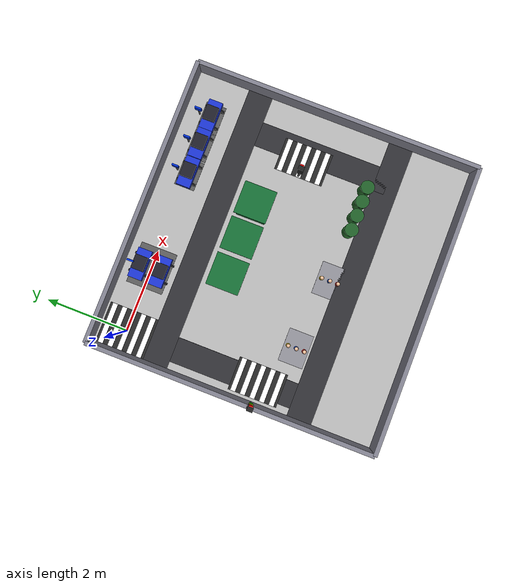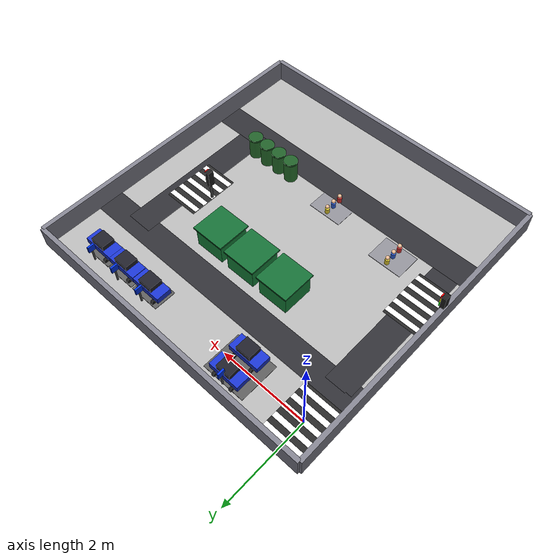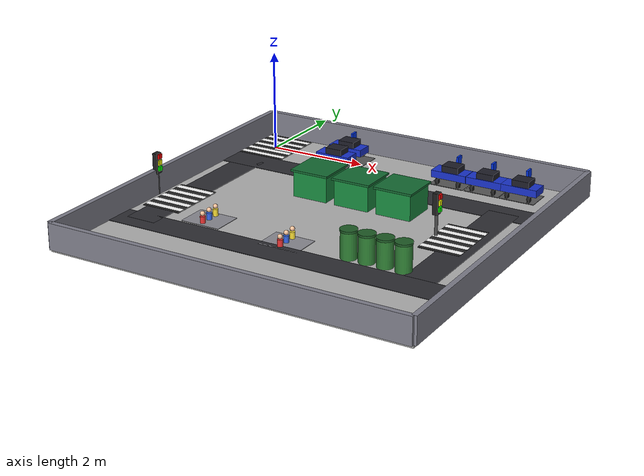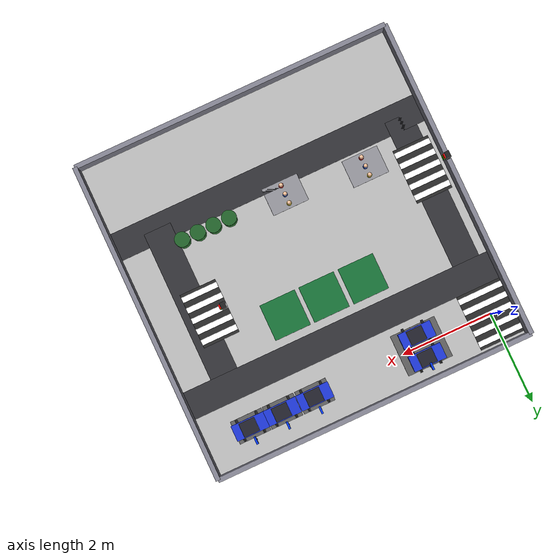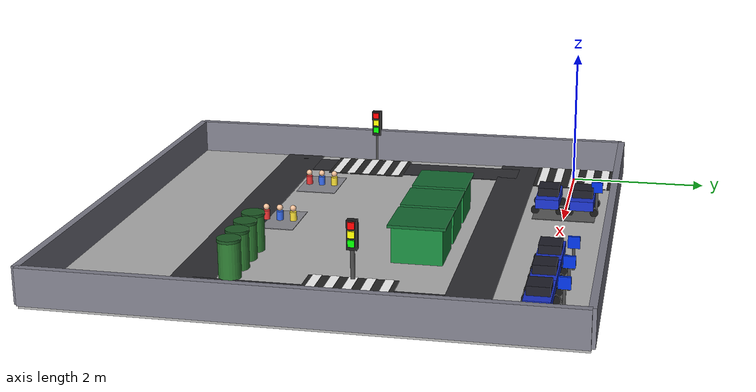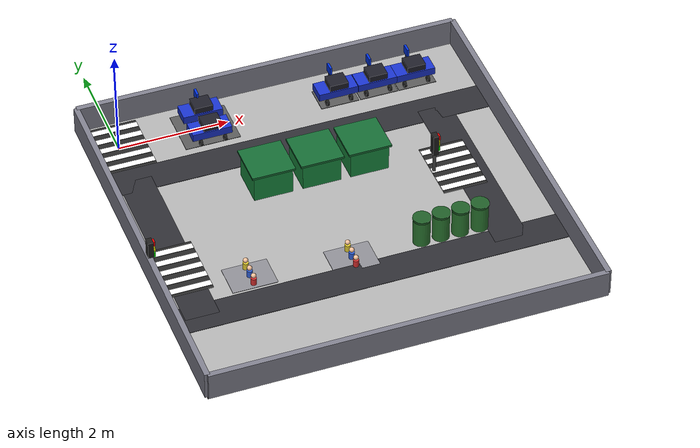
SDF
<?xml version="1.0" ?>

<sdf version="1.6">
  <world name="robot_nav_field">

    <!-- ======================= 物理引擎 ======================= -->
    <physics type="ode">
      <max_step_size>0.001</max_step_size>
      <real_time_factor>1</real_time_factor>
      <real_time_update_rate>1000</real_time_update_rate>
    </physics>

    <!-- ======================= 场景与光照 ======================= -->
    <scene>
      <ambient>0.45 0.45 0.45 1</ambient>
      <background>0.7 0.7 0.7 1</background>
      <shadows>true</shadows>
    </scene>

    <light name="sun" type="directional">
      <pose>0 0 10 0 0 0</pose>
      <diffuse>0.8 0.8 0.8 1</diffuse>
      <specular>0.1 0.1 0.1 1</specular>
      <direction>0.3 0.3 -1</direction>
      <cast_shadows>true</cast_shadows>
    </light>

    <model name="ground_plane">
      <static>true</static>
      <pose>2.975 -2.8 -0.025 0 0 0</pose>
      <link name="ground_link">
        <visual name="ground_visual">
          <geometry>
            <box><size>7.0 7.0 0.05</size></box>
          </geometry>
          <material>
            <ambient>0.70 0.70 0.70 1</ambient>
            <diffuse>0.70 0.70 0.70 1</diffuse>
          </material>
        </visual>
        <collision name="ground_collision">
          <geometry>
            <box><size>7.0 7.0 0.05</size></box>
          </geometry>
        </collision>
      </link>
    </model>

    <!-- ============================================================
         2. 外部围墙 (Boundary Walls)  —— 高 0.5m, 防机器人跑出
         ============================================================ -->
    <model name="boundary_walls">
      <static>true</static>
      <!-- 北墙 (顶部, X=-0.525) -->
      <link name="north_wall">
        <pose>-0.525 -2.8 0.25 0 0 0</pose>
        <visual name="north_visual">
          <geometry><box><size>0.1 7.0 0.5</size></box></geometry>
          <material><ambient>0.50 0.50 0.55 1</ambient><diffuse>0.50 0.50 0.55 1</diffuse></material>
        </visual>
        <collision name="north_collision">
          <geometry><box><size>0.1 7.0 0.5</size></box></geometry>
        </collision>
      </link>
      <!-- 南墙 (底部, X=6.475) -->
      <link name="south_wall">
        <pose>6.475 -2.8 0.25 0 0 0</pose>
        <visual name="south_visual">
          <geometry><box><size>0.1 7.0 0.5</size></box></geometry>
          <material><ambient>0.50 0.50 0.55 1</ambient><diffuse>0.50 0.50 0.55 1</diffuse></material>
        </visual>
        <collision name="south_collision">
          <geometry><box><size>0.1 7.0 0.5</size></box></geometry>
        </collision>
      </link>
      <!-- 西墙 (左侧, Y=-6.3) -->
      <link name="west_wall">
        <pose>2.975 -6.3 0.25 0 0 0</pose>
        <visual name="west_visual">
          <geometry><box><size>7.0 0.1 0.5</size></box></geometry>
          <material><ambient>0.50 0.50 0.55 1</ambient><diffuse>0.50 0.50 0.55 1</diffuse></material>
        </visual>
        <collision name="west_collision">
          <geometry><box><size>7.0 0.1 0.5</size></box></geometry>
        </collision>
      </link>
      <!-- 东墙 (右侧, Y=0.7) -->
      <link name="east_wall">
        <pose>2.975 0.7 0.25 0 0 0</pose>
        <visual name="east_visual">
          <geometry><box><size>7.0 0.1 0.5</size></box></geometry>
          <material><ambient>0.50 0.50 0.55 1</ambient><diffuse>0.50 0.50 0.55 1</diffuse></material>
        </visual>
        <collision name="east_collision">
          <geometry><box><size>7.0 0.1 0.5</size></box></geometry>
        </collision>
      </link>
    </model>

    <model name="roads">
      <static>true</static>
      <!-- 左侧通道 -->
      <link name="road_left">
        <pose>2.975 -4.5 0.005 0 0 0</pose>
        <visual name="road_left_visual">
          <geometry><box><size>7.0 0.6 0.01</size></box></geometry>
          <material><ambient>0.18 0.18 0.20 1</ambient><diffuse>0.18 0.18 0.20 1</diffuse></material>
        </visual>
        <collision name="road_left_collision">
          <geometry><box><size>7.0 0.6 0.01</size></box></geometry>
        </collision>
      </link>
      <!-- 右侧通道 -->
      <link name="road_right">
        <pose>2.975 -0.9 0.005 0 0 0</pose>
        <visual name="road_right_visual">
          <geometry><box><size>7.0 0.6 0.01</size></box></geometry>
          <material><ambient>0.18 0.18 0.20 1</ambient><diffuse>0.18 0.18 0.20 1</diffuse></material>
        </visual>
        <collision name="road_right_collision">
          <geometry><box><size>7.0 0.6 0.01</size></box></geometry>
        </collision>
      </link>
      <!-- 左下通道 (楼宇D/垃圾桶旁) -->
      <link name="road_bottom_left">
        <pose>5.5 -2.7 0.005 0 0 0</pose>
        <visual name="road_bl_visual">
          <geometry><box><size>0.6 3.6 0.01</size></box></geometry>
          <material><ambient>0.18 0.18 0.20 1</ambient><diffuse>0.18 0.18 0.20 1</diffuse></material>
        </visual>
        <collision name="road_bl_collision">
          <geometry><box><size>0.6 3.6 0.01</size></box></geometry>
        </collision>
      </link>
      <!-- 顶部通道 -->
      <link name="road_top">
        <pose>0 -2.7 0.005 0 0 0</pose>
        <visual name="road_top_visual">
          <geometry><box><size>0.6 3.6 0.01</size></box></geometry>
          <material><ambient>0.18 0.18 0.20 1</ambient><diffuse>0.18 0.18 0.20 1</diffuse></material>
        </visual>
        <collision name="road_top_collision">
          <geometry><box><size>0.6 3.6 0.01</size></box></geometry>
        </collision>
      </link>
    </model>

    <!-- ============================================================
         4. 起点/终点区  —— 斑马线, 中心 (0,0,0), 右上角
         ============================================================ -->
    <model name="start_finish">
      <static>true</static>
      <link name="zebra_link">
        <visual name="zebra_base">
          <pose>0 0 0.006 0 0 0</pose>
          <geometry><box><size>1.0 1.2 0.012</size></box></geometry>
          <material><ambient>0.15 0.15 0.15 1</ambient><diffuse>0.15 0.15 0.15 1</diffuse></material>
        </visual>
        <collision name="zebra_base_col">
          <pose>0 0 0.006 0 0 0</pose>
          <geometry><box><size>1.0 1.2 0.012</size></box></geometry>
        </collision>
        <visual name="stripe_1"><pose>0 -0.48 0.013 0 0 0</pose><geometry><box><size>1.0 0.12 0.014</size></box></geometry><material><ambient>1 1 1 1</ambient><diffuse>1 1 1 1</diffuse></material></visual>
        <visual name="stripe_2"><pose>0 -0.24 0.013 0 0 0</pose><geometry><box><size>1.0 0.12 0.014</size></box></geometry><material><ambient>1 1 1 1</ambient><diffuse>1 1 1 1</diffuse></material></visual>
        <visual name="stripe_3"><pose>0 0 0.013 0 0 0</pose><geometry><box><size>1.0 0.12 0.014</size></box></geometry><material><ambient>1 1 1 1</ambient><diffuse>1 1 1 1</diffuse></material></visual>
        <visual name="stripe_4"><pose>0 0.24 0.013 0 0 0</pose><geometry><box><size>1.0 0.12 0.014</size></box></geometry><material><ambient>1 1 1 1</ambient><diffuse>1 1 1 1</diffuse></material></visual>
        <visual name="stripe_5"><pose>0 0.48 0.013 0 0 0</pose><geometry><box><size>1.0 0.12 0.014</size></box></geometry><material><ambient>1 1 1 1</ambient><diffuse>1 1 1 1</diffuse></material></visual>
      </link>
    </model>

    <model name="zebra_top">
      <static>true</static>
      <pose>0 -3.3 0 0 0 0</pose>
      <link name="zebra_top_link">
        <visual name="base">
          <pose>0 0 0.006 0 0 0</pose>
          <geometry><box><size>0.8 1.2 0.012</size></box></geometry>
          <material><ambient>0.15 0.15 0.15 1</ambient><diffuse>0.15 0.15 0.15 1</diffuse></material>
        </visual>
        <collision name="base_col">
          <pose>0 0 0.006 0 0 0</pose>
          <geometry><box><size>0.8 1.2 0.012</size></box></geometry>
        </collision>
        <visual name="s1"><pose>0 -0.48 0.013 0 0 0</pose><geometry><box><size>0.8 0.12 0.014</size></box></geometry><material><ambient>1 1 1 1</ambient><diffuse>1 1 1 1</diffuse></material></visual>
        <visual name="s2"><pose>0 -0.24 0.013 0 0 0</pose><geometry><box><size>0.8 0.12 0.014</size></box></geometry><material><ambient>1 1 1 1</ambient><diffuse>1 1 1 1</diffuse></material></visual>
        <visual name="s3"><pose>0 0 0.013 0 0 0</pose><geometry><box><size>0.8 0.12 0.014</size></box></geometry><material><ambient>1 1 1 1</ambient><diffuse>1 1 1 1</diffuse></material></visual>
        <visual name="s4"><pose>0 0.24 0.013 0 0 0</pose><geometry><box><size>0.8 0.12 0.014</size></box></geometry><material><ambient>1 1 1 1</ambient><diffuse>1 1 1 1</diffuse></material></visual>
        <visual name="s5"><pose>0 0.48 0.013 0 0 0</pose><geometry><box><size>0.8 0.12 0.014</size></box></geometry><material><ambient>1 1 1 1</ambient><diffuse>1 1 1 1</diffuse></material></visual>
      </link>
    </model>

    <model name="traffic_light_top">
      <static>true</static>
      <link name="tl_top_link">
        <visual name="pole_visual">
          <pose>-0.5 -3.3 0.3 0 0 0</pose>
          <geometry><cylinder><radius>0.03</radius><length>0.6</length></cylinder></geometry>
          <material><ambient>0.30 0.30 0.30 1</ambient><diffuse>0.30 0.30 0.30 1</diffuse></material>
        </visual>
        <collision name="pole_col">
          <pose>-0.5 -3.3 0.3 0 0 0</pose>
          <geometry><cylinder><radius>0.03</radius><length>0.6</length></cylinder></geometry>
        </collision>
        <visual name="housing_visual">
          <pose>-0.5 -3.3 0.62 0 0 0</pose>
          <geometry><box><size>0.10 0.14 0.40</size></box></geometry>
          <material><ambient>0.12 0.12 0.12 1</ambient><diffuse>0.12 0.12 0.12 1</diffuse></material>
        </visual>
        <collision name="housing_col">
          <pose>-0.5 -3.3 0.62 0 0 0</pose>
          <geometry><box><size>0.10 0.14 0.40</size></box></geometry>
        </collision>
        <visual name="red_visual">
          <pose>-0.43 -3.3 0.76 0 0 0</pose>
          <geometry><box><size>0.03 0.09 0.09</size></box></geometry>
          <material><ambient>1 0 0 1</ambient><diffuse>1 0 0 1</diffuse></material>
        </visual>
        <visual name="yellow_visual">
          <pose>-0.43 -3.3 0.64 0 0 0</pose>
          <geometry><box><size>0.03 0.09 0.09</size></box></geometry>
          <material><ambient>1 1 0 1</ambient><diffuse>1 1 0 1</diffuse></material>
        </visual>
        <visual name="green_visual">
          <pose>-0.43 -3.3 0.52 0 0 0</pose>
          <geometry><box><size>0.03 0.09 0.09</size></box></geometry>
          <material><ambient>0 1 0 1</ambient><diffuse>0 1 0 1</diffuse></material>
        </visual>
      </link>
    </model>

    <model name="block_a">
      <static>true</static>
      <pose>1.05 -3.85 0 0 0 0</pose>
      <link name="block_a_link">
        <!-- 人行道条带 (Y 宽 0.6m) -->
        <visual name="sidewalk">
          <pose>0 0 0.005 0 0 0</pose>
          <geometry><box><size>0.8 0.6 0.01</size></box></geometry>
          <material><ambient>0.55 0.55 0.58 1</ambient><diffuse>0.55 0.55 0.58 1</diffuse></material>
        </visual>
        <collision name="sidewalk_col">
          <pose>0 0 0.005 0 0 0</pose>
          <geometry><box><size>0.8 0.6 0.01</size></box></geometry>
        </collision>
        <!-- 人偶1 (红) -->
        <visual name="p1_body"><pose>0 -0.2 0.07 0 0 0</pose><geometry><cylinder><radius>0.05</radius><length>0.14</length></cylinder></geometry><material><ambient>0.90 0.20 0.20 1</ambient><diffuse>0.90 0.20 0.20 1</diffuse></material></visual>
        <visual name="p1_head"><pose>0 -0.2 0.19 0 0 0</pose><geometry><sphere><radius>0.045</radius></sphere></geometry><material><ambient>0.95 0.75 0.60 1</ambient><diffuse>0.95 0.75 0.60 1</diffuse></material></visual>
        <!-- 人偶2 (蓝) -->
        <visual name="p2_body"><pose>0 0 0.07 0 0 0</pose><geometry><cylinder><radius>0.05</radius><length>0.14</length></cylinder></geometry><material><ambient>0.20 0.40 0.90 1</ambient><diffuse>0.20 0.40 0.90 1</diffuse></material></visual>
        <visual name="p2_head"><pose>0 0 0.19 0 0 0</pose><geometry><sphere><radius>0.045</radius></sphere></geometry><material><ambient>0.95 0.75 0.60 1</ambient><diffuse>0.95 0.75 0.60 1</diffuse></material></visual>
        <!-- 人偶3 (黄) -->
        <visual name="p3_body"><pose>0 0.2 0.07 0 0 0</pose><geometry><cylinder><radius>0.05</radius><length>0.14</length></cylinder></geometry><material><ambient>0.95 0.85 0.20 1</ambient><diffuse>0.95 0.85 0.20 1</diffuse></material></visual>
        <visual name="p3_head"><pose>0 0.2 0.19 0 0 0</pose><geometry><sphere><radius>0.045</radius></sphere></geometry><material><ambient>0.95 0.75 0.60 1</ambient><diffuse>0.95 0.75 0.60 1</diffuse></material></visual>
      </link>
    </model>

    <!-- ============================================================
         7. B街区 (左侧中部人偶区)  —— 中心 (2.8, -4.03)
         ============================================================ -->
    <model name="block_b">
      <static>true</static>
      <pose>2.8 -4.025 0 0 0 0</pose>
      <link name="block_b_link">
        <visual name="sidewalk">
          <pose>0 0 0.005 0 0 0</pose>
          <geometry><box><size>0.8 0.6 0.01</size></box></geometry>
          <material><ambient>0.55 0.55 0.58 1</ambient><diffuse>0.55 0.55 0.58 1</diffuse></material>
        </visual>
        <collision name="sidewalk_col">
          <pose>0 0 0.005 0 0 0</pose>
          <geometry><box><size>0.8 0.6 0.01</size></box></geometry>
        </collision>
        <visual name="p1_body"><pose>0 -0.2 0.07 0 0 0</pose><geometry><cylinder><radius>0.05</radius><length>0.14</length></cylinder></geometry><material><ambient>0.90 0.20 0.20 1</ambient><diffuse>0.90 0.20 0.20 1</diffuse></material></visual>
        <visual name="p1_head"><pose>0 -0.2 0.19 0 0 0</pose><geometry><sphere><radius>0.045</radius></sphere></geometry><material><ambient>0.95 0.75 0.60 1</ambient><diffuse>0.95 0.75 0.60 1</diffuse></material></visual>
        <visual name="p2_body"><pose>0 0 0.07 0 0 0</pose><geometry><cylinder><radius>0.05</radius><length>0.14</length></cylinder></geometry><material><ambient>0.20 0.40 0.90 1</ambient><diffuse>0.20 0.40 0.90 1</diffuse></material></visual>
        <visual name="p2_head"><pose>0 0 0.19 0 0 0</pose><geometry><sphere><radius>0.045</radius></sphere></geometry><material><ambient>0.95 0.75 0.60 1</ambient><diffuse>0.95 0.75 0.60 1</diffuse></material></visual>
        <visual name="p3_body"><pose>0 0.2 0.07 0 0 0</pose><geometry><cylinder><radius>0.05</radius><length>0.14</length></cylinder></geometry><material><ambient>0.95 0.85 0.20 1</ambient><diffuse>0.95 0.85 0.20 1</diffuse></material></visual>
        <visual name="p3_head"><pose>0 0.2 0.19 0 0 0</pose><geometry><sphere><radius>0.045</radius></sphere></geometry><material><ambient>0.95 0.75 0.60 1</ambient><diffuse>0.95 0.75 0.60 1</diffuse></material></visual>
      </link>
    </model>

    <model name="building_a">
      <static>true</static>
      <pose>2.10 -1.75 0 0 0 0</pose>
      <link name="building_a_link">
        <visual name="body">
          <pose>0 0 0.25 0 0 0</pose>
          <geometry><box><size>0.7 0.7 0.5</size></box></geometry>
          <material><ambient>0.10 0.55 0.25 1</ambient><diffuse>0.10 0.55 0.25 1</diffuse></material>
        </visual>
        <collision name="body_col">
          <pose>0 0 0.25 0 0 0</pose>
          <geometry><box><size>0.7 0.7 0.5</size></box></geometry>
        </collision>
        <visual name="roof">
          <pose>0 0 0.52 0 0 0</pose>
          <geometry><box><size>0.78 0.78 0.04</size></box></geometry>
          <material><ambient>0.08 0.42 0.20 1</ambient><diffuse>0.08 0.42 0.20 1</diffuse></material>
        </visual>
      </link>
    </model>

    <model name="building_b">
      <static>true</static>
      <pose>2.98 -1.75 0 0 0 0</pose>
      <link name="building_b_link">
        <visual name="body">
          <pose>0 0 0.25 0 0 0</pose>
          <geometry><box><size>0.7 0.7 0.5</size></box></geometry>
          <material><ambient>0.10 0.55 0.25 1</ambient><diffuse>0.10 0.55 0.25 1</diffuse></material>
        </visual>
        <collision name="body_col">
          <pose>0 0 0.25 0 0 0</pose>
          <geometry><box><size>0.7 0.7 0.5</size></box></geometry>
        </collision>
        <visual name="roof">
          <pose>0 0 0.52 0 0 0</pose>
          <geometry><box><size>0.78 0.78 0.04</size></box></geometry>
          <material><ambient>0.08 0.42 0.20 1</ambient><diffuse>0.08 0.42 0.20 1</diffuse></material>
        </visual>
      </link>
    </model>

    <model name="building_c">
      <static>true</static>
      <pose>3.85 -1.75 0 0 0 0</pose>
      <link name="building_c_link">
        <visual name="body">
          <pose>0 0 0.25 0 0 0</pose>
          <geometry><box><size>0.7 0.7 0.5</size></box></geometry>
          <material><ambient>0.10 0.55 0.25 1</ambient><diffuse>0.10 0.55 0.25 1</diffuse></material>
        </visual>
        <collision name="body_col">
          <pose>0 0 0.25 0 0 0</pose>
          <geometry><box><size>0.7 0.7 0.5</size></box></geometry>
        </collision>
        <visual name="roof">
          <pose>0 0 0.52 0 0 0</pose>
          <geometry><box><size>0.78 0.78 0.04</size></box></geometry>
          <material><ambient>0.08 0.42 0.20 1</ambient><diffuse>0.08 0.42 0.20 1</diffuse></material>
        </visual>
      </link>
    </model>

    <!-- ============================================================
         9. 电动车停车区 (右侧偏上)  —— 中心 (1.58, 0)
         两辆蓝色电动车 + P 指示牌
         ============================================================ -->
    <model name="ev_parking_zone">
      <static>true</static>
      <pose>1.58 0 0 0 0 0</pose>
      <link name="ev_parking_link">
        <!-- 地面停车区标记 -->
        <visual name="pad">
          <pose>0 0 0.005 0 0 0</pose>
          <geometry><box><size>1.0 0.9 0.01</size></box></geometry>
          <material><ambient>0.35 0.35 0.35 1</ambient><diffuse>0.35 0.35 0.35 1</diffuse></material>
        </visual>
        <collision name="pad_col">
          <pose>0 0 0.005 0 0 0</pose>
          <geometry><box><size>1.0 0.9 0.01</size></box></geometry>
        </collision>
        <!-- P 指示牌 -->
        <visual name="p_pole">
          <pose>0 0.45 0.175 0 0 0</pose>
          <geometry><cylinder><radius>0.02</radius><length>0.35</length></cylinder></geometry>
          <material><ambient>0.30 0.30 0.30 1</ambient><diffuse>0.30 0.30 0.30 1</diffuse></material>
        </visual>
        <collision name="p_pole_col">
          <pose>0 0.45 0.175 0 0 0</pose>
          <geometry><cylinder><radius>0.02</radius><length>0.35</length></cylinder></geometry>
        </collision>
        <visual name="p_sign">
          <pose>0 0.45 0.38 0 0 0</pose>
          <geometry><box><size>0.04 0.16 0.16</size></box></geometry>
          <material><ambient>0.00 0.20 0.90 1</ambient><diffuse>0.00 0.20 0.90 1</diffuse></material>
        </visual>
        <!-- 电动车 1 -->
        <visual name="c1_body"><pose>0 -0.25 0.19 0 0 0</pose><geometry><box><size>0.72 0.34 0.14</size></box></geometry><material><ambient>0.10 0.20 0.80 1</ambient><diffuse>0.10 0.20 0.80 1</diffuse></material></visual>
        <collision name="c1_body_col"><pose>0 -0.25 0.19 0 0 0</pose><geometry><box><size>0.72 0.34 0.14</size></box></geometry></collision>
        <visual name="c1_cabin"><pose>0.02 -0.25 0.32 0 0 0</pose><geometry><box><size>0.34 0.30 0.12</size></box></geometry><material><ambient>0.12 0.12 0.16 1</ambient><diffuse>0.12 0.12 0.16 1</diffuse></material></visual>
        <visual name="c1_w1"><pose>0.22 -0.07 0.06 0 1.5708 0</pose><geometry><cylinder><radius>0.06</radius><length>0.05</length></cylinder></geometry><material><ambient>0.10 0.10 0.10 1</ambient><diffuse>0.10 0.10 0.10 1</diffuse></material></visual>
        <visual name="c1_w2"><pose>0.22 -0.43 0.06 0 1.5708 0</pose><geometry><cylinder><radius>0.06</radius><length>0.05</length></cylinder></geometry><material><ambient>0.10 0.10 0.10 1</ambient><diffuse>0.10 0.10 0.10 1</diffuse></material></visual>
        <visual name="c1_w3"><pose>-0.22 -0.07 0.06 0 1.5708 0</pose><geometry><cylinder><radius>0.06</radius><length>0.05</length></cylinder></geometry><material><ambient>0.10 0.10 0.10 1</ambient><diffuse>0.10 0.10 0.10 1</diffuse></material></visual>
        <visual name="c1_w4"><pose>-0.22 -0.43 0.06 0 1.5708 0</pose><geometry><cylinder><radius>0.06</radius><length>0.05</length></cylinder></geometry><material><ambient>0.10 0.10 0.10 1</ambient><diffuse>0.10 0.10 0.10 1</diffuse></material></visual>
        <!-- 电动车 2 -->
        <visual name="c2_body"><pose>0 0.25 0.19 0 0 0</pose><geometry><box><size>0.72 0.34 0.14</size></box></geometry><material><ambient>0.10 0.20 0.80 1</ambient><diffuse>0.10 0.20 0.80 1</diffuse></material></visual>
        <collision name="c2_body_col"><pose>0 0.25 0.19 0 0 0</pose><geometry><box><size>0.72 0.34 0.14</size></box></geometry></collision>
        <visual name="c2_cabin"><pose>0.02 0.25 0.32 0 0 0</pose><geometry><box><size>0.34 0.30 0.12</size></box></geometry><material><ambient>0.12 0.12 0.16 1</ambient><diffuse>0.12 0.12 0.16 1</diffuse></material></visual>
        <visual name="c2_w1"><pose>0.22 0.43 0.06 0 1.5708 0</pose><geometry><cylinder><radius>0.06</radius><length>0.05</length></cylinder></geometry><material><ambient>0.10 0.10 0.10 1</ambient><diffuse>0.10 0.10 0.10 1</diffuse></material></visual>
        <visual name="c2_w2"><pose>0.22 0.07 0.06 0 1.5708 0</pose><geometry><cylinder><radius>0.06</radius><length>0.05</length></cylinder></geometry><material><ambient>0.10 0.10 0.10 1</ambient><diffuse>0.10 0.10 0.10 1</diffuse></material></visual>
        <visual name="c2_w3"><pose>-0.22 0.43 0.06 0 1.5708 0</pose><geometry><cylinder><radius>0.06</radius><length>0.05</length></cylinder></geometry><material><ambient>0.10 0.10 0.10 1</ambient><diffuse>0.10 0.10 0.10 1</diffuse></material></visual>
        <visual name="c2_w4"><pose>-0.22 0.07 0.06 0 1.5708 0</pose><geometry><cylinder><radius>0.06</radius><length>0.05</length></cylinder></geometry><material><ambient>0.10 0.10 0.10 1</ambient><diffuse>0.10 0.10 0.10 1</diffuse></material></visual>
      </link>
    </model>

    <model name="parking_slots">
      <static>true</static>
      <link name="slot_3">
        <pose>4.00 0 0.006 0 0 0</pose>
        <visual name="slot3_visual">
          <geometry><box><size>0.7 0.5 0.012</size></box></geometry>
          <material><ambient>0.35 0.35 0.35 1</ambient><diffuse>0.35 0.35 0.35 1</diffuse></material>
        </visual>
        <collision name="slot3_col">
          <geometry><box><size>0.7 0.5 0.012</size></box></geometry>
        </collision>
      </link>
      <link name="slot_2">
        <pose>4.73 0 0.006 0 0 0</pose>
        <visual name="slot2_visual">
          <geometry><box><size>0.7 0.5 0.012</size></box></geometry>
          <material><ambient>0.35 0.35 0.35 1</ambient><diffuse>0.35 0.35 0.35 1</diffuse></material>
        </visual>
        <collision name="slot2_col">
          <geometry><box><size>0.7 0.5 0.012</size></box></geometry>
        </collision>
      </link>
      <link name="slot_1">
        <pose>5.45 0 0.006 0 0 0</pose>
        <visual name="slot1_visual">
          <geometry><box><size>0.7 0.5 0.012</size></box></geometry>
          <material><ambient>0.35 0.35 0.35 1</ambient><diffuse>0.35 0.35 0.35 1</diffuse></material>
        </visual>
        <collision name="slot1_col">
          <geometry><box><size>0.7 0.5 0.012</size></box></geometry>
        </collision>
      </link>
    </model>

    <model name="car_slot_3">
      <static>true</static>
      <pose>4.00 0 0 0 0 0</pose>
      <link name="car_slot_3_link">
        <visual name="body"><pose>0 0 0.19 0 0 0</pose><geometry><box><size>0.72 0.34 0.14</size></box></geometry><material><ambient>0.10 0.20 0.80 1</ambient><diffuse>0.10 0.20 0.80 1</diffuse></material></visual>
        <collision name="body_col"><pose>0 0 0.19 0 0 0</pose><geometry><box><size>0.72 0.34 0.14</size></box></geometry></collision>
        <visual name="cabin"><pose>0.02 0 0.32 0 0 0</pose><geometry><box><size>0.34 0.30 0.12</size></box></geometry><material><ambient>0.12 0.12 0.16 1</ambient><diffuse>0.12 0.12 0.16 1</diffuse></material></visual>
        <visual name="w1"><pose>0.22 0.18 0.06 0 1.5708 0</pose><geometry><cylinder><radius>0.06</radius><length>0.05</length></cylinder></geometry><material><ambient>0.10 0.10 0.10 1</ambient><diffuse>0.10 0.10 0.10 1</diffuse></material></visual>
        <visual name="w2"><pose>0.22 -0.18 0.06 0 1.5708 0</pose><geometry><cylinder><radius>0.06</radius><length>0.05</length></cylinder></geometry><material><ambient>0.10 0.10 0.10 1</ambient><diffuse>0.10 0.10 0.10 1</diffuse></material></visual>
        <visual name="w3"><pose>-0.22 0.18 0.06 0 1.5708 0</pose><geometry><cylinder><radius>0.06</radius><length>0.05</length></cylinder></geometry><material><ambient>0.10 0.10 0.10 1</ambient><diffuse>0.10 0.10 0.10 1</diffuse></material></visual>
        <visual name="w4"><pose>-0.22 -0.18 0.06 0 1.5708 0</pose><geometry><cylinder><radius>0.06</radius><length>0.05</length></cylinder></geometry><material><ambient>0.10 0.10 0.10 1</ambient><diffuse>0.10 0.10 0.10 1</diffuse></material></visual>
      </link>
    </model>

    <model name="car_slot_2">
      <static>true</static>
      <pose>4.73 0 0 0 0 0</pose>
      <link name="car_slot_2_link">
        <visual name="body"><pose>0 0 0.19 0 0 0</pose><geometry><box><size>0.72 0.34 0.14</size></box></geometry><material><ambient>0.10 0.20 0.80 1</ambient><diffuse>0.10 0.20 0.80 1</diffuse></material></visual>
        <collision name="body_col"><pose>0 0 0.19 0 0 0</pose><geometry><box><size>0.72 0.34 0.14</size></box></geometry></collision>
        <visual name="cabin"><pose>0.02 0 0.32 0 0 0</pose><geometry><box><size>0.34 0.30 0.12</size></box></geometry><material><ambient>0.12 0.12 0.16 1</ambient><diffuse>0.12 0.12 0.16 1</diffuse></material></visual>
        <visual name="w1"><pose>0.22 0.18 0.06 0 1.5708 0</pose><geometry><cylinder><radius>0.06</radius><length>0.05</length></cylinder></geometry><material><ambient>0.10 0.10 0.10 1</ambient><diffuse>0.10 0.10 0.10 1</diffuse></material></visual>
        <visual name="w2"><pose>0.22 -0.18 0.06 0 1.5708 0</pose><geometry><cylinder><radius>0.06</radius><length>0.05</length></cylinder></geometry><material><ambient>0.10 0.10 0.10 1</ambient><diffuse>0.10 0.10 0.10 1</diffuse></material></visual>
        <visual name="w3"><pose>-0.22 0.18 0.06 0 1.5708 0</pose><geometry><cylinder><radius>0.06</radius><length>0.05</length></cylinder></geometry><material><ambient>0.10 0.10 0.10 1</ambient><diffuse>0.10 0.10 0.10 1</diffuse></material></visual>
        <visual name="w4"><pose>-0.22 -0.18 0.06 0 1.5708 0</pose><geometry><cylinder><radius>0.06</radius><length>0.05</length></cylinder></geometry><material><ambient>0.10 0.10 0.10 1</ambient><diffuse>0.10 0.10 0.10 1</diffuse></material></visual>
      </link>
    </model>

    <model name="car_slot_1">
      <static>true</static>
      <pose>5.45 0 0 0 0 0</pose>
      <link name="car_slot_1_link">
        <visual name="body"><pose>0 0 0.19 0 0 0</pose><geometry><box><size>0.72 0.34 0.14</size></box></geometry><material><ambient>0.10 0.20 0.80 1</ambient><diffuse>0.10 0.20 0.80 1</diffuse></material></visual>
        <collision name="body_col"><pose>0 0 0.19 0 0 0</pose><geometry><box><size>0.72 0.34 0.14</size></box></geometry></collision>
        <visual name="cabin"><pose>0.02 0 0.32 0 0 0</pose><geometry><box><size>0.34 0.30 0.12</size></box></geometry><material><ambient>0.12 0.12 0.16 1</ambient><diffuse>0.12 0.12 0.16 1</diffuse></material></visual>
        <visual name="w1"><pose>0.22 0.18 0.06 0 1.5708 0</pose><geometry><cylinder><radius>0.06</radius><length>0.05</length></cylinder></geometry><material><ambient>0.10 0.10 0.10 1</ambient><diffuse>0.10 0.10 0.10 1</diffuse></material></visual>
        <visual name="w2"><pose>0.22 -0.18 0.06 0 1.5708 0</pose><geometry><cylinder><radius>0.06</radius><length>0.05</length></cylinder></geometry><material><ambient>0.10 0.10 0.10 1</ambient><diffuse>0.10 0.10 0.10 1</diffuse></material></visual>
        <visual name="w3"><pose>-0.22 0.18 0.06 0 1.5708 0</pose><geometry><cylinder><radius>0.06</radius><length>0.05</length></cylinder></geometry><material><ambient>0.10 0.10 0.10 1</ambient><diffuse>0.10 0.10 0.10 1</diffuse></material></visual>
        <visual name="w4"><pose>-0.22 -0.18 0.06 0 1.5708 0</pose><geometry><cylinder><radius>0.06</radius><length>0.05</length></cylinder></geometry><material><ambient>0.10 0.10 0.10 1</ambient><diffuse>0.10 0.10 0.10 1</diffuse></material></visual>
      </link>
    </model>

    <!-- 停车位 P 指示牌 x3 -->
    <model name="p_sign_slot_3">
      <static>true</static>
      <pose>4.00 0.3 0 0 0 0</pose>
      <link name="ps3_link">
        <visual name="pole"><pose>0 0 0.175 0 0 0</pose><geometry><cylinder><radius>0.02</radius><length>0.35</length></cylinder></geometry><material><ambient>0.30 0.30 0.30 1</ambient><diffuse>0.30 0.30 0.30 1</diffuse></material></visual>
        <collision name="pole_col"><pose>0 0 0.175 0 0 0</pose><geometry><cylinder><radius>0.02</radius><length>0.35</length></cylinder></geometry></collision>
        <visual name="sign"><pose>0 0 0.38 0 0 0</pose><geometry><box><size>0.04 0.16 0.16</size></box></geometry><material><ambient>0.00 0.20 0.90 1</ambient><diffuse>0.00 0.20 0.90 1</diffuse></material></visual>
      </link>
    </model>
    <model name="p_sign_slot_2">
      <static>true</static>
      <pose>4.73 0.3 0 0 0 0</pose>
      <link name="ps2_link">
        <visual name="pole"><pose>0 0 0.175 0 0 0</pose><geometry><cylinder><radius>0.02</radius><length>0.35</length></cylinder></geometry><material><ambient>0.30 0.30 0.30 1</ambient><diffuse>0.30 0.30 0.30 1</diffuse></material></visual>
        <collision name="pole_col"><pose>0 0 0.175 0 0 0</pose><geometry><cylinder><radius>0.02</radius><length>0.35</length></cylinder></geometry></collision>
        <visual name="sign"><pose>0 0 0.38 0 0 0</pose><geometry><box><size>0.04 0.16 0.16</size></box></geometry><material><ambient>0.00 0.20 0.90 1</ambient><diffuse>0.00 0.20 0.90 1</diffuse></material></visual>
      </link>
    </model>
    <model name="p_sign_slot_1">
      <static>true</static>
      <pose>5.45 0.3 0 0 0 0</pose>
      <link name="ps1_link">
        <visual name="pole"><pose>0 0 0.175 0 0 0</pose><geometry><cylinder><radius>0.02</radius><length>0.35</length></cylinder></geometry><material><ambient>0.30 0.30 0.30 1</ambient><diffuse>0.30 0.30 0.30 1</diffuse></material></visual>
        <collision name="pole_col"><pose>0 0 0.175 0 0 0</pose><geometry><cylinder><radius>0.02</radius><length>0.35</length></cylinder></geometry></collision>
        <visual name="sign"><pose>0 0 0.38 0 0 0</pose><geometry><box><size>0.04 0.16 0.16</size></box></geometry><material><ambient>0.00 0.20 0.90 1</ambient><diffuse>0.00 0.20 0.90 1</diffuse></material></visual>
      </link>
    </model>

    <model name="trash_bins">
      <static>true</static>
      <link name="bin_1">
        <pose>4.05 -4.03 0 0 0 0</pose>
        <visual name="body">
          <pose>0 0 0.25 0 0 0</pose>
          <geometry><cylinder><radius>0.15</radius><length>0.5</length></cylinder></geometry>
          <material><ambient>0.18 0.49 0.20 1</ambient><diffuse>0.18 0.49 0.20 1</diffuse></material>
        </visual>
        <collision name="body_col">
          <pose>0 0 0.25 0 0 0</pose>
          <geometry><cylinder><radius>0.15</radius><length>0.5</length></cylinder></geometry>
        </collision>
        <visual name="lid">
          <pose>0 0 0.52 0 0 0</pose>
          <geometry><cylinder><radius>0.16</radius><length>0.04</length></cylinder></geometry>
          <material><ambient>0.12 0.36 0.15 1</ambient><diffuse>0.12 0.36 0.15 1</diffuse></material>
        </visual>
      </link>
      <link name="bin_2">
        <pose>4.40 -4.03 0 0 0 0</pose>
        <visual name="body">
          <pose>0 0 0.25 0 0 0</pose>
          <geometry><cylinder><radius>0.15</radius><length>0.5</length></cylinder></geometry>
          <material><ambient>0.18 0.49 0.20 1</ambient><diffuse>0.18 0.49 0.20 1</diffuse></material>
        </visual>
        <collision name="body_col">
          <pose>0 0 0.25 0 0 0</pose>
          <geometry><cylinder><radius>0.15</radius><length>0.5</length></cylinder></geometry>
        </collision>
        <visual name="lid">
          <pose>0 0 0.52 0 0 0</pose>
          <geometry><cylinder><radius>0.16</radius><length>0.04</length></cylinder></geometry>
          <material><ambient>0.12 0.36 0.15 1</ambient><diffuse>0.12 0.36 0.15 1</diffuse></material>
        </visual>
      </link>
      <link name="bin_3">
        <pose>4.75 -4.03 0 0 0 0</pose>
        <visual name="body">
          <pose>0 0 0.25 0 0 0</pose>
          <geometry><cylinder><radius>0.15</radius><length>0.5</length></cylinder></geometry>
          <material><ambient>0.18 0.49 0.20 1</ambient><diffuse>0.18 0.49 0.20 1</diffuse></material>
        </visual>
        <collision name="body_col">
          <pose>0 0 0.25 0 0 0</pose>
          <geometry><cylinder><radius>0.15</radius><length>0.5</length></cylinder></geometry>
        </collision>
        <visual name="lid">
          <pose>0 0 0.52 0 0 0</pose>
          <geometry><cylinder><radius>0.16</radius><length>0.04</length></cylinder></geometry>
          <material><ambient>0.12 0.36 0.15 1</ambient><diffuse>0.12 0.36 0.15 1</diffuse></material>
        </visual>
      </link>
      <link name="bin_4">
        <pose>5.10 -4.03 0 0 0 0</pose>
        <visual name="body">
          <pose>0 0 0.25 0 0 0</pose>
          <geometry><cylinder><radius>0.15</radius><length>0.5</length></cylinder></geometry>
          <material><ambient>0.18 0.49 0.20 1</ambient><diffuse>0.18 0.49 0.20 1</diffuse></material>
        </visual>
        <collision name="body_col">
          <pose>0 0 0.25 0 0 0</pose>
          <geometry><cylinder><radius>0.15</radius><length>0.5</length></cylinder></geometry>
        </collision>
        <visual name="lid">
          <pose>0 0 0.52 0 0 0</pose>
          <geometry><cylinder><radius>0.16</radius><length>0.04</length></cylinder></geometry>
          <material><ambient>0.12 0.36 0.15 1</ambient><diffuse>0.12 0.36 0.15 1</diffuse></material>
        </visual>
      </link>
    </model>

    <!-- ============================================================
         12. 底部红绿灯 + 斑马线  —— (5.25, -2.45), 底部中央偏左
         ============================================================ -->
    <model name="zebra_bottom">
      <static>true</static>
      <pose>5.25 -2.45 0 0 0 0</pose>
      <link name="zebra_bottom_link">
        <visual name="base">
          <pose>0 0 0.006 0 0 0</pose>
          <geometry><box><size>0.8 1.2 0.012</size></box></geometry>
          <material><ambient>0.15 0.15 0.15 1</ambient><diffuse>0.15 0.15 0.15 1</diffuse></material>
        </visual>
        <collision name="base_col">
          <pose>0 0 0.006 0 0 0</pose>
          <geometry><box><size>0.8 1.2 0.012</size></box></geometry>
        </collision>
        <visual name="s1"><pose>0 -0.48 0.013 0 0 0</pose><geometry><box><size>0.8 0.12 0.014</size></box></geometry><material><ambient>1 1 1 1</ambient><diffuse>1 1 1 1</diffuse></material></visual>
        <visual name="s2"><pose>0 -0.24 0.013 0 0 0</pose><geometry><box><size>0.8 0.12 0.014</size></box></geometry><material><ambient>1 1 1 1</ambient><diffuse>1 1 1 1</diffuse></material></visual>
        <visual name="s3"><pose>0 0 0.013 0 0 0</pose><geometry><box><size>0.8 0.12 0.014</size></box></geometry><material><ambient>1 1 1 1</ambient><diffuse>1 1 1 1</diffuse></material></visual>
        <visual name="s4"><pose>0 0.24 0.013 0 0 0</pose><geometry><box><size>0.8 0.12 0.014</size></box></geometry><material><ambient>1 1 1 1</ambient><diffuse>1 1 1 1</diffuse></material></visual>
        <visual name="s5"><pose>0 0.48 0.013 0 0 0</pose><geometry><box><size>0.8 0.12 0.014</size></box></geometry><material><ambient>1 1 1 1</ambient><diffuse>1 1 1 1</diffuse></material></visual>
      </link>
    </model>

    <model name="traffic_light_bottom">
      <static>true</static>
      <link name="tl_bottom_link">
        <visual name="pole_visual">
          <pose>4.9 -2.45 0.3 0 0 0</pose>
          <geometry><cylinder><radius>0.03</radius><length>0.6</length></cylinder></geometry>
          <material><ambient>0.30 0.30 0.30 1</ambient><diffuse>0.30 0.30 0.30 1</diffuse></material>
        </visual>
        <collision name="pole_col">
          <pose>4.9 -2.45 0.3 0 0 0</pose>
          <geometry><cylinder><radius>0.03</radius><length>0.6</length></cylinder></geometry>
        </collision>
        <visual name="housing_visual">
          <pose>4.9 -2.45 0.62 0 0 0</pose>
          <geometry><box><size>0.10 0.14 0.40</size></box></geometry>
          <material><ambient>0.12 0.12 0.12 1</ambient><diffuse>0.12 0.12 0.12 1</diffuse></material>
        </visual>
        <collision name="housing_col">
          <pose>4.9 -2.45 0.62 0 0 0</pose>
          <geometry><box><size>0.10 0.14 0.40</size></box></geometry>
        </collision>
        <visual name="red_visual">
          <pose>4.97 -2.45 0.76 0 0 0</pose>
          <geometry><box><size>0.03 0.09 0.09</size></box></geometry>
          <material><ambient>1 0 0 1</ambient><diffuse>1 0 0 1</diffuse></material>
        </visual>
        <visual name="yellow_visual">
          <pose>4.97 -2.45 0.64 0 0 0</pose>
          <geometry><box><size>0.03 0.09 0.09</size></box></geometry>
          <material><ambient>1 1 0 1</ambient><diffuse>1 1 0 1</diffuse></material>
        </visual>
        <visual name="green_visual">
          <pose>4.97 -2.45 0.52 0 0 0</pose>
          <geometry><box><size>0.03 0.09 0.09</size></box></geometry>
          <material><ambient>0 1 0 1</ambient><diffuse>0 1 0 1</diffuse></material>
        </visual>
      </link>
    </model>

  </world>
</sdf>
